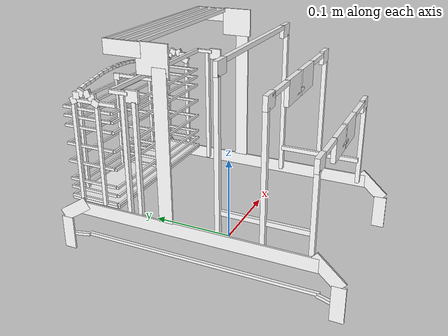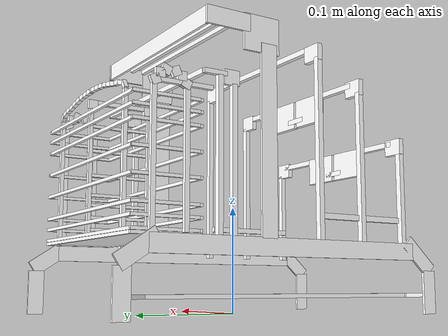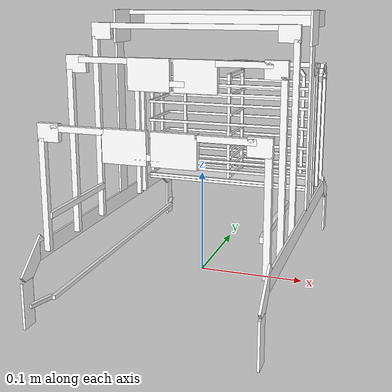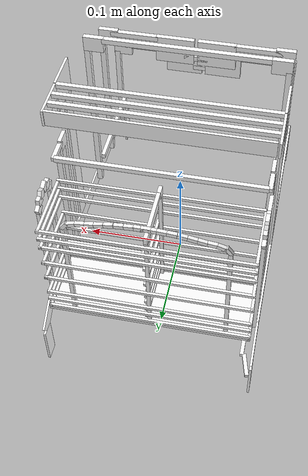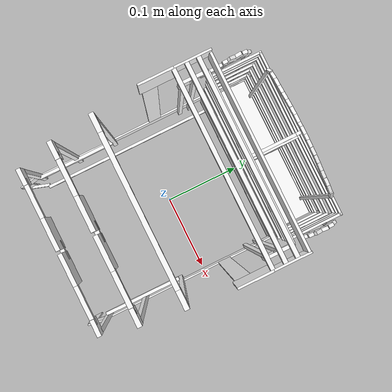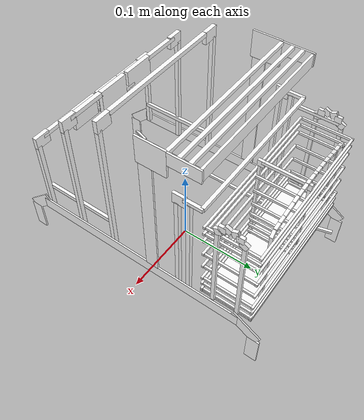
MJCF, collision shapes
<?xml version='1.0' encoding='utf-8'?>
<mujoco model="model">
  <option timestep="0.002" gravity="0.0 0.0 -9.81" />
  <compiler angle="radian" />
  <asset>
    <mesh file="visual/DishRack042.obj" name="DishRack042_vis" />
    <texture file="visual/T_BC001.png" name="DishRack042_material" type="2d" />
    <material name="DishRack042_material" rgba="1 1 1 1.0" texture="DishRack042_material" shininess="0.4472135901451111" specular="0.3103448502657381" />
  </asset>
  <default>
    <default class="visual">
      <geom conaffinity="0" contype="0" group="1" type="mesh" />
    </default>
    <default class="collision">
      <geom group="0" rgba="1 1 1 0.25" density="1.0" solref="0.004 1" solimp="0.998 0.998 0.001" />
    </default>
    <default class="spawn">
      <geom group="0" rgba="1 1 1 0.5" contype="0" conaffinity="0" />
      <site group="0" rgba="1 1 1 0.5" />
    </default>
    <default class="region">
      <geom group="1" conaffinity="0" contype="0" rgba="0 1 0 0" mass="0" />
    </default>
  </default>
  <worldbody>
    <body>
      <body name="object">
        <geom mesh="DishRack042_vis" type="mesh" solimp="0.998 0.998 0.001" solref="0.001 1" friction="0.95 0.3 0.1" class="visual" material="DishRack042_material" />
        <geom type="box" pos="0.09812424331903458 0.14519676566123962 0.05329057574272156" size="0.0010000000474974513 0.00732495216652751 0.020183244720101357" quat="0.47491875290870667 -0.8800296783447266 -0.0 0.0" class="collision" />
        <geom type="box" pos="0.09812424331903458 0.15834902226924896 0.02018326334655285" size="0.00100003182888031 0.007325205951929092 0.020183753222227097" quat="1.0 0.0 0.0 0.0" class="collision" />
        <geom type="box" pos="0.09812424331903458 -0.00020394474267959595 0.0578056201338768" size="0.0010000314796343446 0.13755778968334198 0.007815157063305378" quat="1.0 0.0 0.0 0.0" class="collision" />
        <geom type="box" pos="0.09812424331903458 -0.14589247107505798 0.05329057574272156" size="0.0010000000474974513 0.00732495216652751 0.020183244720101357" quat="0.914061963558197 -0.4055745601654053 -0.0 0.0" class="collision" />
        <geom type="box" pos="0.09812424331903458 -0.15855813026428223 0.02018326334655285" size="0.001000031246803701 0.007325201760977507 0.02018374390900135" quat="1.0 0.0 0.0 0.0" class="collision" />
        <geom type="box" pos="-0.09801483899354935 -0.15855813026428223 0.02018326334655285" size="0.0011167555348947644 0.00732519943267107 0.020183740183711052" quat="1.0 0.0 0.0 0.0" class="collision" />
        <geom type="box" pos="-0.09811704605817795 -0.14589247107505798 0.05329057574272156" size="0.0010000000474974513 0.00732495216652751 0.020183244720101357" quat="0.914061963558197 -0.4055745601654053 -0.0 0.0" class="collision" />
        <geom type="box" pos="-0.08700335770845413 -0.00020396495528984815 0.017600763589143753" size="0.0018623655196279287 0.13755768537521362 0.0017073304625228047" quat="1.0 0.0 0.0 0.0" class="collision" />
        <geom type="box" pos="-0.09811704605817795 0.15834902226924896 0.02018326334655285" size="0.0010000304318964481 0.007325194776058197 0.020183730870485306" quat="1.0 0.0 0.0 0.0" class="collision" />
        <geom type="box" pos="-0.09811704605817795 0.14519676566123962 0.05329057574272156" size="0.0010000000474974513 0.00732495216652751 0.020183244720101357" quat="0.47491875290870667 -0.8800296783447266 -0.0 0.0" class="collision" />
        <geom type="box" pos="-0.09302928298711777 -0.1469597965478897 0.017600763589143753" size="0.001862304168753326 0.0017072830814868212 0.011708522215485573" quat="0.6989660859107971 0.6989661455154419 -0.10698767006397247 -0.10698766261339188" class="collision" />
        <geom type="box" pos="-0.09216161072254181 0.1474674940109253 0.017600763589143753" size="0.001862304168753326 0.0017072830814868212 0.011708522215485573" quat="0.701445460319519 0.701445460319519 0.08929882943630219 0.08929882943630219" class="collision" />
        <geom type="box" pos="-0.09807482361793518 -0.00020394474267959595 0.0578056201338768" size="0.00104225252289325 0.13755761086940765 0.007815145887434483" quat="1.0 0.0 0.0 0.0" class="collision" />
        <geom type="box" pos="0.0617334358394146 -0.12929661571979523 0.16236911714076996" size="0.023731574416160583 0.0025506233796477318 0.002500049537047744" quat="1.0 0.0 0.0 0.0" class="collision" />
        <geom type="box" pos="0.08788196742534637 -0.12929661571979523 0.15877528488636017" size="0.009599801152944565 0.002550623146817088 0.007552897557616234" quat="1.0 0.0 0.0 0.0" class="collision" />
        <geom type="box" pos="0.09449537098407745 -0.12929661571979523 0.10512560606002808" size="0.0026883198879659176 0.0025506222154945135 0.04873150214552879" quat="1.0 0.0 0.0 0.0" class="collision" />
        <geom type="box" pos="0.020886199548840523 -0.12929661571979523 0.15136735141277313" size="0.018887117505073547 0.0025506222154945135 0.013812217861413956" quat="1.0 0.0 0.0 0.0" class="collision" />
        <geom type="box" pos="-0.020360084250569344 -0.12929661571979523 0.15136735141277313" size="0.0188871119171381 0.002550621749833226 0.013812215067446232" quat="1.0 0.0 0.0 0.0" class="collision" />
        <geom type="box" pos="-0.09396925568580627 -0.12929661571979523 0.10512560606002808" size="0.002688318258151412 0.002550620585680008 0.048731476068496704" quat="1.0 0.0 0.0 0.0" class="collision" />
        <geom type="box" pos="-0.0873558521270752 -0.12929661571979523 0.15877528488636017" size="0.00959978997707367 0.0025506203528493643 0.007552885916084051" quat="1.0 0.0 0.0 0.0" class="collision" />
        <geom type="box" pos="-0.06120732054114342 -0.12929661571979523 0.16236911714076996" size="0.023731542751193047 0.0025506194215267897 0.0025000455789268017" quat="1.0 0.0 0.0 0.0" class="collision" />
        <geom type="box" pos="-3.9637088775634766e-06 -0.12929661571979523 0.14458726346492767" size="0.011679471470415592 0.0025506189558655024 0.0025000451132655144" quat="1.0 0.0 0.0 0.0" class="collision" />
        <geom type="box" pos="-3.9637088775634766e-06 -0.07923830300569534 0.19556832313537598" size="0.011679469607770443 0.002550618490204215 0.0025000455789268017" quat="1.0 0.0 0.0 0.0" class="collision" />
        <geom type="box" pos="-0.06120732054114342 -0.07923830300569534 0.21335017681121826" size="0.023731529712677002 0.002550617791712284 0.0025000451132655144" quat="1.0 0.0 0.0 0.0" class="collision" />
        <geom type="box" pos="-0.0873558521270752 -0.07923830300569534 0.20975634455680847" size="0.009599778801202774 0.0025506175588816404 0.007552877068519592" quat="1.0 0.0 0.0 0.0" class="collision" />
        <geom type="box" pos="-0.09396925568580627 -0.07923830300569534 0.13061612844467163" size="0.00268831430003047 0.002550616627559066 0.07422278821468353" quat="1.0 0.0 0.0 0.0" class="collision" />
        <geom type="box" pos="-0.020360084250569344 -0.07923830300569534 0.20234842598438263" size="0.018887070938944817 0.002550616627559066 0.013812195509672165" quat="1.0 0.0 0.0 0.0" class="collision" />
        <geom type="box" pos="0.020886199548840523 -0.07923830300569534 0.20234842598438263" size="0.018887067213654518 0.0025506161618977785 0.013812192715704441" quat="1.0 0.0 0.0 0.0" class="collision" />
        <geom type="box" pos="0.09449537098407745 -0.07923830300569534 0.13061612844467163" size="0.0026883126702159643 0.0025506149977445602 0.07422273606061935" quat="1.0 0.0 0.0 0.0" class="collision" />
        <geom type="box" pos="0.08788196742534637 -0.07923830300569534 0.20975634455680847" size="0.009599767625331879 0.0025506147649139166 0.007552865892648697" quat="1.0 0.0 0.0 0.0" class="collision" />
        <geom type="box" pos="0.0617334358394146 -0.07923830300569534 0.21335017681121826" size="0.023731498047709465 0.002550613833591342 0.0025000411551445723" quat="1.0 0.0 0.0 0.0" class="collision" />
        <geom type="box" pos="0.08788196742534637 -0.03079475648701191 0.23550064861774445" size="0.009599762968719006 0.0025506136007606983 0.007552865892648697" quat="1.0 0.0 0.0 0.0" class="collision" />
        <geom type="box" pos="0.09449537098407745 -0.03079475648701191 0.14348828792572021" size="0.0026883103419095278 0.0025506126694381237 0.08709480613470078" quat="1.0 0.0 0.0 0.0" class="collision" />
        <geom type="box" pos="-0.09396925568580627 -0.03079475648701191 0.14348828792572021" size="0.002688309643417597 0.0025506122037768364 0.08709479123353958" quat="1.0 0.0 0.0 0.0" class="collision" />
        <geom type="box" pos="-0.0873558521270752 -0.03079475648701191 0.23550064861774445" size="0.009599755518138409 0.0025506119709461927 0.007552858907729387" quat="1.0 0.0 0.0 0.0" class="collision" />
        <geom type="box" pos="0.0007912907749414444 -0.03079475648701191 0.24038106203079224" size="0.07891037315130234 0.002550611039623618 0.0025000451132655144" quat="1.0 0.0 0.0 0.0" class="collision" />
        <geom type="box" pos="-0.09126342833042145 -0.08056387305259705 0.08722738921642303" size="0.001986763207241893 0.0482235811650753 0.0026085420977324247" quat="1.0 0.0 0.0 0.0" class="collision" />
        <geom type="box" pos="-0.00014976662350818515 0.05129773169755936 0.2512452304363251" size="0.09793826192617416 0.0020790824200958014 0.002036513527855277" quat="1.0 0.0 0.0 0.0" class="collision" />
        <geom type="box" pos="0.09810756146907806 0.06720468401908875 0.24551424384117126" size="0.0010562663665041327 0.021432172507047653 0.007775335106998682" quat="1.0 0.0 0.0 0.0" class="collision" />
        <geom type="box" pos="0.09810470789670944 0.034254997968673706 0.2378646731376648" size="0.001102047273889184 0.017711753025650978 0.016128387302160263" quat="1.0 0.0 0.0 0.0" class="collision" />
        <geom type="box" pos="0.09001735597848892 -0.08056387305259705 0.08722738921642303" size="0.0019867608789354563 0.048223547637462616 0.002608539769425988" quat="1.0 0.0 0.0 0.0" class="collision" />
        <geom type="box" pos="-0.09818189591169357 0.02702193334698677 0.14764058589935303" size="0.00105626555159688 0.00794873759150505 0.08294233679771423" quat="1.0 0.0 0.0 0.0" class="collision" />
        <geom type="box" pos="0.09810756146907806 0.02702193334698677 0.14764058589935303" size="0.0010562652023509145 0.007948735728859901 0.08294232189655304" quat="1.0 0.0 0.0 0.0" class="collision" />
        <geom type="box" pos="0.0007937625050544739 0.08667310327291489 0.24551424384117126" size="0.09664298593997955 0.0013266701716929674 0.007775323931127787" quat="1.0 0.0 0.0 0.0" class="collision" />
        <geom type="box" pos="-0.09803177416324615 0.034254997968673706 0.2378646731376648" size="0.001102045876905322 0.017711730673909187 0.016128364950418472" quat="1.0 0.0 0.0 0.0" class="collision" />
        <geom type="box" pos="-0.09809741377830505 0.06720468401908875 0.24551424384117126" size="0.0010562643874436617 0.021432140842080116 0.0077753192745149136" quat="1.0 0.0 0.0 0.0" class="collision" />
        <geom type="box" pos="-0.00014976662350818515 0.06397181004285812 0.2512452304363251" size="0.09793810546398163 0.002079077297821641 0.0020365084055811167" quat="1.0 0.0 0.0 0.0" class="collision" />
        <geom type="box" pos="-0.00014976662350818515 0.07547774910926819 0.2512452304363251" size="0.09793808311223984 0.00207907659932971 0.0020365079399198294" quat="1.0 0.0 0.0 0.0" class="collision" />
        <geom type="box" pos="0.0005906226579099894 0.14925682544708252 0.1738404482603073" size="0.09360899031162262 0.0012909588403999805 0.0013491717400029302" quat="1.0 0.0 0.0 0.0" class="collision" />
        <geom type="box" pos="0.09469316899776459 0.059669505804777145 0.12221623957157135" size="0.0024942331947386265 0.0023115708027035 0.06884057819843292" quat="1.0 0.0 0.0 0.0" class="collision" />
        <geom type="box" pos="0.09476630389690399 0.062097638845443726 0.19637197256088257" size="0.0017205722397193313 0.007347515318542719 0.006519752088934183" quat="1.0 0.0 0.0 0.0" class="collision" />
        <geom type="box" pos="0.09457383304834366 0.0775551125407219 0.19879381358623505" size="0.0019450861727818847 0.010875292122364044 0.0020287316292524338" quat="1.0 0.0 0.0 0.0" class="collision" />
        <geom type="box" pos="-0.09395468980073929 0.0775551125407219 0.19879381358623505" size="0.0019450861727818847 0.010875292122364044 0.0020287316292524338" quat="1.0 0.0 0.0 0.0" class="collision" />
        <geom type="box" pos="-0.09376221895217896 0.062097638845443726 0.19637197256088257" size="0.0017205722397193313 0.007347515318542719 0.006519752088934183" quat="1.0 0.0 0.0 0.0" class="collision" />
        <geom type="box" pos="-0.09383535385131836 0.059669505804777145 0.12221623957157135" size="0.0024942331947386265 0.0023115708027035 0.06884057819843292" quat="1.0 0.0 0.0 0.0" class="collision" />
        <geom type="box" pos="-0.09383535385131836 0.07313530147075653 0.12529203295707703" size="0.0024942331947386265 0.0023115708027035 0.0719163715839386" quat="1.0 0.0 0.0 0.0" class="collision" />
        <geom type="box" pos="0.09469316899776459 0.07313530147075653 0.12529203295707703" size="0.0024942331947386265 0.0023115708027035 0.0719163715839386" quat="1.0 0.0 0.0 0.0" class="collision" />
        <geom type="box" pos="0.09251801669597626 0.12066538631916046 0.1738404482603073" size="0.001296572620049119 0.029882393777370453 0.0013491717400029302" quat="1.0 0.0 0.0 0.0" class="collision" />
        <geom type="box" pos="0.0005906226579099894 0.08904540538787842 0.1738404482603073" size="0.09360899031162262 0.0012909588403999805 0.0013491717400029302" quat="1.0 0.0 0.0 0.0" class="collision" />
        <geom type="box" pos="-0.0927247479557991 0.12066538631916046 0.1738404482603073" size="0.001296572620049119 0.029882393777370453 0.0013491717400029302" quat="1.0 0.0 0.0 0.0" class="collision" />
        <geom type="box" pos="-0.0927247479557991 0.12066538631916046 0.1638977974653244" size="0.001296572620049119 0.029882393777370453 0.0013491717400029302" quat="1.0 0.0 0.0 0.0" class="collision" />
        <geom type="box" pos="0.0005906226579099894 0.08904540538787842 0.1638977974653244" size="0.09360899031162262 0.0012909588403999805 0.0013491717400029302" quat="1.0 0.0 0.0 0.0" class="collision" />
        <geom type="box" pos="0.09251801669597626 0.12066538631916046 0.1638977974653244" size="0.001296572620049119 0.029882393777370453 0.0013491717400029302" quat="1.0 0.0 0.0 0.0" class="collision" />
        <geom type="box" pos="0.0005906226579099894 0.14925682544708252 0.1638977974653244" size="0.09360899031162262 0.0012909588403999805 0.0013491717400029302" quat="1.0 0.0 0.0 0.0" class="collision" />
        <geom type="box" pos="0.0005906226579099894 0.14925682544708252 0.1525777131319046" size="0.09360899031162262 0.0012909588403999805 0.0013491717400029302" quat="1.0 0.0 0.0 0.0" class="collision" />
        <geom type="box" pos="0.09251801669597626 0.12066538631916046 0.1525777131319046" size="0.001296572620049119 0.029882393777370453 0.0013491717400029302" quat="1.0 0.0 0.0 0.0" class="collision" />
        <geom type="box" pos="0.0005906226579099894 0.08904540538787842 0.1525777131319046" size="0.09360899031162262 0.0012909588403999805 0.0013491717400029302" quat="1.0 0.0 0.0 0.0" class="collision" />
        <geom type="box" pos="-0.0927247479557991 0.12066538631916046 0.1525777131319046" size="0.001296572620049119 0.029882393777370453 0.0013491717400029302" quat="1.0 0.0 0.0 0.0" class="collision" />
        <geom type="box" pos="-0.0927247479557991 0.12066538631916046 0.1315518319606781" size="0.001296572620049119 0.029882393777370453 0.0013491717400029302" quat="1.0 0.0 0.0 0.0" class="collision" />
        <geom type="box" pos="0.0005906226579099894 0.08904540538787842 0.1315518319606781" size="0.09360899031162262 0.0012909588403999805 0.0013491717400029302" quat="1.0 0.0 0.0 0.0" class="collision" />
        <geom type="box" pos="0.09251801669597626 0.12066538631916046 0.1315518319606781" size="0.001296572620049119 0.029882393777370453 0.0013491717400029302" quat="1.0 0.0 0.0 0.0" class="collision" />
        <geom type="box" pos="0.0005906226579099894 0.14925682544708252 0.1315518319606781" size="0.09360899031162262 0.0012909588403999805 0.0013491717400029302" quat="1.0 0.0 0.0 0.0" class="collision" />
        <geom type="box" pos="0.0005906226579099894 0.14925682544708252 0.1105259507894516" size="0.09360899031162262 0.0012909588403999805 0.0013491717400029302" quat="1.0 0.0 0.0 0.0" class="collision" />
        <geom type="box" pos="0.09251801669597626 0.12066538631916046 0.1105259507894516" size="0.001296572620049119 0.029882393777370453 0.0013491717400029302" quat="1.0 0.0 0.0 0.0" class="collision" />
        <geom type="box" pos="0.0005906226579099894 0.08904540538787842 0.1105259507894516" size="0.09360899031162262 0.0012909588403999805 0.0013491717400029302" quat="1.0 0.0 0.0 0.0" class="collision" />
        <geom type="box" pos="-0.0927247479557991 0.12066538631916046 0.1105259507894516" size="0.001296572620049119 0.029882393777370453 0.0013491717400029302" quat="1.0 0.0 0.0 0.0" class="collision" />
        <geom type="box" pos="-0.0927247479557991 0.12066538631916046 0.08904941380023956" size="0.001296572620049119 0.029882393777370453 0.0013491717400029302" quat="1.0 0.0 0.0 0.0" class="collision" />
        <geom type="box" pos="0.0005906226579099894 0.08904540538787842 0.08904941380023956" size="0.09360899031162262 0.0012909588403999805 0.0013491717400029302" quat="1.0 0.0 0.0 0.0" class="collision" />
        <geom type="box" pos="0.09251801669597626 0.12066538631916046 0.08904941380023956" size="0.001296572620049119 0.029882393777370453 0.0013491717400029302" quat="1.0 0.0 0.0 0.0" class="collision" />
        <geom type="box" pos="0.0005906226579099894 0.14925682544708252 0.08904941380023956" size="0.09360899031162262 0.0012909588403999805 0.0013491717400029302" quat="1.0 0.0 0.0 0.0" class="collision" />
        <geom type="box" pos="0.0005906226579099894 0.14925682544708252 0.07887743413448334" size="0.09360899031162262 0.0012909588403999805 0.0013491717400029302" quat="1.0 0.0 0.0 0.0" class="collision" />
        <geom type="box" pos="0.09251801669597626 0.12066538631916046 0.07887743413448334" size="0.001296572620049119 0.029882393777370453 0.0013491717400029302" quat="1.0 0.0 0.0 0.0" class="collision" />
        <geom type="box" pos="0.0005906226579099894 0.08904540538787842 0.07887743413448334" size="0.09360899031162262 0.0012909588403999805 0.0013491717400029302" quat="1.0 0.0 0.0 0.0" class="collision" />
        <geom type="box" pos="-0.0927247479557991 0.12066538631916046 0.07887743413448334" size="0.001296572620049119 0.029882393777370453 0.0013491717400029302" quat="1.0 0.0 0.0 0.0" class="collision" />
        <geom type="box" pos="-0.0927247479557991 0.12066538631916046 0.06559590995311737" size="0.001296572620049119 0.029882393777370453 0.0013491717400029302" quat="1.0 0.0 0.0 0.0" class="collision" />
        <geom type="box" pos="0.0005906226579099894 0.08904540538787842 0.06559590995311737" size="0.09360899031162262 0.0012909588403999805 0.0013491717400029302" quat="1.0 0.0 0.0 0.0" class="collision" />
        <geom type="box" pos="0.09251801669597626 0.12066538631916046 0.06559590995311737" size="0.001296572620049119 0.029882393777370453 0.0013491717400029302" quat="1.0 0.0 0.0 0.0" class="collision" />
        <geom type="box" pos="0.0005906226579099894 0.14925682544708252 0.06559590995311737" size="0.09360899031162262 0.0012909588403999805 0.0013491717400029302" quat="1.0 0.0 0.0 0.0" class="collision" />
        <geom type="box" pos="0.0005906226579099894 0.0871577039361 0.19882707297801971" size="0.09360899031162262 0.0020162523724138737 0.002220979193225503" quat="1.0 0.0 0.0 0.0" class="collision" />
        <geom type="box" pos="0.0021278641652315855 0.11885514855384827 0.1420135200023651" size="0.0012965725036337972 0.029202518984675407 0.0013491717400029302" quat="1.0 0.0 0.0 0.0" class="collision" />
        <geom type="box" pos="0.0021278641652315855 0.11885514855384827 0.12047063559293747" size="0.0012965725036337972 0.029202518984675407 0.0013491717400029302" quat="1.0 0.0 0.0 0.0" class="collision" />
        <geom type="box" pos="0.0021278641652315855 0.11885514855384827 0.10328598320484161" size="0.0012965725036337972 0.029202518984675407 0.0013491717400029302" quat="1.0 0.0 0.0 0.0" class="collision" />
        <geom type="box" pos="0.0021278641652315855 0.11885514855384827 0.094805046916008" size="0.0012965725036337972 0.029202518984675407 0.0013491717400029302" quat="1.0 0.0 0.0 0.0" class="collision" />
        <geom type="box" pos="0.0021278641652315855 0.11885514855384827 0.08397959917783737" size="0.0012965725036337972 0.029202518984675407 0.0013491717400029302" quat="1.0 0.0 0.0 0.0" class="collision" />
        <geom type="box" pos="0.0021278641652315855 0.11885514855384827 0.07360344380140305" size="0.0012965725036337972 0.029202518984675407 0.0013491717400029302" quat="1.0 0.0 0.0 0.0" class="collision" />
        <geom type="box" pos="0.0021278641652315855 0.11885514855384827 0.16374467313289642" size="0.0012965725036337972 0.029202518984675407 0.0013491717400029302" quat="1.0 0.0 0.0 0.0" class="collision" />
        <geom type="box" pos="-0.0003130196128040552 0.11868306994438171 0.1843297928571701" size="0.0016986498376354575 0.024996059015393257 0.0018562134355306625" quat="1.0 0.0 0.0 0.0" class="collision" />
        <geom type="box" pos="-0.0004213925276417285 0.1452857404947281 0.18239150941371918" size="0.0017893007025122643 0.00401107594370842 0.003873587818816304" quat="1.0 0.0 0.0 0.0" class="collision" />
        <geom type="box" pos="-0.00044715835247188807 0.1467295140028 0.12338940799236298" size="0.0016299005364999175 0.001601002411916852 0.056869711726903915" quat="1.0 0.0 0.0 0.0" class="collision" />
        <geom type="box" pos="-0.00044715835247188807 0.0915246233344078 0.12338940799236298" size="0.0016299003036692739 0.0016010021790862083 0.05686969310045242" quat="1.0 0.0 0.0 0.0" class="collision" />
        <geom type="box" pos="-0.0004213925276417285 0.0929683968424797 0.18239150941371918" size="0.0017892990726977587 0.004011072218418121 0.0038735843263566494" quat="1.0 0.0 0.0 0.0" class="collision" />
        <geom type="box" pos="-0.09577339887619019 0.13397184014320374 0.12338940799236298" size="0.0016298997215926647 0.0021535418927669525 0.05686965584754944" quat="1.0 0.0 0.0 0.0" class="collision" />
        <geom type="box" pos="-0.09574763476848602 0.1329449564218521 0.1839190423488617" size="0.004011050797998905 0.0017892876639962196 0.0038735629059374332" quat="0.6906969547271729 -0.15145190060138702 -0.15145191550254822 -0.6906970143318176" class="collision" />
        <geom type="box" pos="-0.09563925862312317 0.10600697994232178 0.1843297928571701" size="0.0016986480914056301 0.02499603107571602 0.0018562100594863296" quat="1.0 0.0 0.0 0.0" class="collision" />
        <geom type="box" pos="-0.09574763476848602 0.12880012392997742 0.1896679699420929" size="0.0017892967443913221 0.004031879361718893 0.0038244561292231083" quat="1.0 0.0 0.0 0.0" class="collision" />
        <geom type="box" pos="-0.09574763476848602 0.12342377007007599 0.19274164736270905" size="0.004011050797998905 0.0017892876639962196 0.0038735626731067896" quat="0.6918314695358276 0.1461821347475052 0.1461821049451828 -0.6918314695358276" class="collision" />
        <geom type="box" pos="-0.09574763476848602 0.11503975093364716 0.19274164736270905" size="0.004011050797998905 0.0017892876639962196 0.0038735626731067896" quat="0.6918314695358276 -0.146182119846344 0.146182119846344 0.6918314695358276" class="collision" />
        <geom type="box" pos="-0.09574763476848602 0.10966339707374573 0.1896679699420929" size="0.001789296162314713 0.0040318784303963184 0.00382445496506989" quat="1.0 0.0 0.0 0.0" class="collision" />
        <geom type="box" pos="-0.09574763476848602 0.10551856458187103 0.1839190423488617" size="0.004011050797998905 0.0017892876639962196 0.0038735629059374332" quat="0.6906970143318176 0.15145190060138702 -0.15145191550254822 0.6906969547271729" class="collision" />
        <geom type="box" pos="-0.09577339887619019 0.10449168086051941 0.12338940799236298" size="0.0016298986738547683 0.002153539564460516 0.05686958506703377" quat="1.0 0.0 0.0 0.0" class="collision" />
        <geom type="box" pos="0.09537690877914429 0.10449168086051941 0.12338940799236298" size="0.0016298983246088028 0.0021535390987992287 0.056869566440582275" quat="1.0 0.0 0.0 0.0" class="collision" />
        <geom type="box" pos="0.09540267288684845 0.10551856458187103 0.1839190423488617" size="0.004011050797998905 0.0017892876639962196 0.0038735629059374332" quat="0.6906970143318176 0.15145190060138702 -0.15145191550254822 0.6906969547271729" class="collision" />
        <geom type="box" pos="0.09540267288684845 0.10966339707374573 0.1896679699420929" size="0.0017892945325002074 0.00403187470510602 0.003824451472610235" quat="1.0 0.0 0.0 0.0" class="collision" />
        <geom type="box" pos="0.09540267288684845 0.11503975093364716 0.19274164736270905" size="0.004011050797998905 0.0017892876639962196 0.0038735626731067896" quat="0.6918314695358276 -0.146182119846344 0.146182119846344 0.6918314695358276" class="collision" />
        <geom type="box" pos="0.09540267288684845 0.12342377007007599 0.19274164736270905" size="0.004011050797998905 0.0017892876639962196 0.0038735626731067896" quat="0.6918314695358276 0.1461821347475052 0.1461821049451828 -0.6918314695358276" class="collision" />
        <geom type="box" pos="0.09540267288684845 0.12880012392997742 0.1896679699420929" size="0.0017892939504235983 0.004031873773783445 0.003824450308457017" quat="1.0 0.0 0.0 0.0" class="collision" />
        <geom type="box" pos="0.09540267288684845 0.1329449564218521 0.1839190423488617" size="0.004011050797998905 0.0017892876639962196 0.0038735629059374332" quat="0.6906969547271729 -0.15145190060138702 -0.15145191550254822 -0.6906970143318176" class="collision" />
        <geom type="box" pos="0.07065597176551819 0.14638908207416534 0.12338940799236298" size="0.0017797090113162994 0.001750897616147995 0.0568695105612278" quat="1.0 0.0 0.0 0.0" class="collision" />
        <geom type="box" pos="0.0691283568739891 0.14638908207416534 0.18364809453487396" size="0.0017797034233808517 0.0017508948221802711 0.0042350864969193935" quat="0.9542053937911987 7.828645509633247e-10 -0.29915234446525574 2.3450315023154644e-09" class="collision" />
        <geom type="box" pos="0.063046894967556 0.14638908207416534 0.1867217719554901" size="0.0017797034233808517 0.0017508948221802711 0.0042350864969193935" quat="0.8053207993507385 -1.3075202254242413e-08 -0.5928393006324768 -3.916616719834565e-08" class="collision" />
        <geom type="box" pos="0.05531611293554306 0.14638908207416534 0.18846042454242706" size="0.0017797035397961736 0.0017508948221802711 0.004235086962580681" quat="0.6633944511413574 3.9135247931199046e-08 0.7482698559761047 1.17227976659251e-07" class="collision" />
        <geom type="box" pos="0.047181714326143265 0.14638908207416534 0.18960916996002197" size="0.0017797034233808517 0.0017508948221802711 0.0042350864969193935" quat="0.6359711289405823 3.971164019844764e-08 0.7717128396034241 1.1895536289330266e-07" class="collision" />
        <geom type="box" pos="0.038985222578048706 0.14638908207416534 0.19113048911094666" size="0.0017797034233808517 0.0017508948221802711 0.0042350864969193935" quat="0.6359711289405823 3.971164019844764e-08 0.7717128396034241 1.1895536289330266e-07" class="collision" />
        <geom type="box" pos="0.03063349425792694 0.14638908207416534 0.19258971512317657" size="0.0017797034233808517 0.0017508948221802711 0.0042350864969193935" quat="0.6470820307731628 3.948636617678858e-08 0.7624203562736511 1.1828034018890321e-07" class="collision" />
        <geom type="box" pos="0.022033385932445526 0.14638908207416534 0.19361427426338196" size="0.0017797034233808517 0.0017508948221802711 0.0042350864969193935" quat="0.674288809299469 3.8886135200755234e-08 0.7384677529335022 1.1648236153405378e-07" class="collision" />
        <geom type="box" pos="0.013588517904281616 0.14638908207416534 0.19414207339286804" size="0.0017797034233808517 0.0017508948221802711 0.0042350864969193935" quat="0.6813094019889832 3.871983267345058e-08 0.7319955825805664 1.1598306315363516e-07" class="collision" />
        <geom type="box" pos="0.005392028950154781 0.14638908207416534 0.1945456862449646" size="0.00430605374276638 0.0017508981982246041 0.0019558724015951157" quat="1.0 0.0 0.0 0.0" class="collision" />
        <geom type="box" pos="-0.0006311503238976002 0.14638908207416534 0.1947319656610489" size="0.004248920362442732 0.0017508978489786386 0.0018128606025129557" quat="1.0 0.0 0.0 0.0" class="collision" />
        <geom type="box" pos="-0.005576875060796738 0.14638908207416534 0.1945456862449646" size="0.0017797034233808517 0.0017508948221802711 0.0042350864969193935" quat="0.6921103596687317 3.8453379147540545e-08 -0.721791684627533 -1.151848820768464e-07" class="collision" />
        <geom type="box" pos="-0.013773363083600998 0.14638908207416534 0.19414207339286804" size="0.0017797034233808517 0.0017508948221802711 0.0042350864969193935" quat="0.6813094019889832 3.8719562667210994e-08 -0.7319955825805664 -1.1598326921102853e-07" class="collision" />
        <geom type="box" pos="-0.022218231111764908 0.14638908207416534 0.19361427426338196" size="0.0017797034233808517 0.0017508948221802711 0.0042350864969193935" quat="0.6742889285087585 3.888599664492176e-08 -0.7384676337242126 -1.164819067867029e-07" class="collision" />
        <geom type="box" pos="-0.030818339437246323 0.14638908207416534 0.19258971512317657" size="0.0017797034233808517 0.0017508948221802711 0.0042350864969193935" quat="0.6470820307731628 3.9486351965933864e-08 -0.7624203562736511 -1.182803259780485e-07" class="collision" />
        <geom type="box" pos="-0.03917006775736809 0.14638908207416534 0.19113048911094666" size="0.0017797034233808517 0.0017508948221802711 0.0042350864969193935" quat="0.6359712481498718 3.9711828492272616e-08 -0.7717127799987793 -1.1895482998625084e-07" class="collision" />
        <geom type="box" pos="-0.047366559505462646 0.14638908207416534 0.18960916996002197" size="0.0017797034233808517 0.0017508948221802711 0.0042350864969193935" quat="0.6359712481498718 3.9711828492272616e-08 -0.7717127799987793 -1.1895482998625084e-07" class="collision" />
        <geom type="box" pos="-0.05550095811486244 0.14638908207416534 0.18846042454242706" size="0.0017797034233808517 0.0017508948221802711 0.0042350864969193935" quat="0.663394570350647 3.913512003350661e-08 -0.7482697367668152 -1.1722784876155856e-07" class="collision" />
        <geom type="box" pos="-0.06323173642158508 0.14638908207416534 0.1867217719554901" size="0.0017797034233808517 0.0017508948221802711 0.0042350864969193935" quat="0.8053207993507385 -1.307521113602661e-08 0.5928393006324768 3.9166174303773005e-08" class="collision" />
        <geom type="box" pos="-0.06931319832801819 0.14638908207416534 0.18364809453487396" size="0.0017797034233808517 0.0017508948221802711 0.0042350864969193935" quat="0.9542053937911987 7.82864606474476e-10 0.29915231466293335 -2.3450317243600693e-09" class="collision" />
        <geom type="box" pos="-0.07084082067012787 0.14638908207416534 0.12338940799236298" size="0.0017797073815017939 0.0017508968012407422 0.05686945840716362" quat="1.0 0.0 0.0 0.0" class="collision" />
        <geom type="box" pos="-0.0927247479557991 0.12066538631916046 0.06849664449691772" size="0.001296572620049119 0.029882393777370453 0.0013491717400029302" quat="1.0 0.0 0.0 0.0" class="collision" />
        <geom type="box" pos="0.0005906226579099894 0.08904540538787842 0.06849664449691772" size="0.09360899031162262 0.0012909588403999805 0.0013491717400029302" quat="1.0 0.0 0.0 0.0" class="collision" />
        <geom type="box" pos="0.09251801669597626 0.12066538631916046 0.06849664449691772" size="0.001296572620049119 0.029882393777370453 0.0013491717400029302" quat="1.0 0.0 0.0 0.0" class="collision" />
        <geom type="box" pos="0.0005906226579099894 0.14925682544708252 0.06849664449691772" size="0.09360899031162262 0.0012909588403999805 0.0013491717400029302" quat="1.0 0.0 0.0 0.0" class="collision" />
        <geom type="box" pos="-0.00037657609209418297 0.11906209588050842 0.06648799777030945" size="0.09200100600719452 0.02932550385594368 0.001349171856418252" quat="1.0 0.0 0.0 0.0" class="collision" />
        <geom type="box" pos="0.09544764459133148 0.13397184014320374 0.12338940799236298" size="0.0016298949485644698 0.0021535323467105627 0.056869350373744965" quat="1.0 0.0 0.0 0.0" class="collision" />
        <geom class="region" name="reg_int_0" type="box" pos="-0.0007180869579315186 -0.1025279313325882 0.18452550563961267" size="0.08776784485578537 0.019505796790122987 0.16477471294254065" />
        <geom class="region" name="reg_int_1" type="box" pos="-0.0007181316614151001 -0.05547577887773514 0.18452549073845148" size="0.08776789700984955 0.019505796790122987 0.16477469804137945" />
        <geom class="region" name="reg_int_2" type="box" pos="-0.0007181018590927124 0.027750592678785324 0.1338616544380784" size="0.08776794171333313 0.052059287041425706 0.11411086174100638" />
        <geom class="region" name="reg_int_3" type="box" pos="0.0003232210874557495 0.06775013729929924 0.3016163110733032" size="0.0950626859664917 0.019505800515413285 0.0476839075088501" />
        <geom class="region" name="reg_int_4" type="box" pos="-0.04686031024903059 0.11741570383310318 0.2097812220454216" size="0.04319013173133135 0.026085680186748506 0.13951899653673172" />
        <geom class="region" name="reg_int_5" type="box" pos="0.047003019601106644 0.11764783039689064 0.20972619950771332" size="0.04319329729676247 0.02613187751173973 0.13957401907444" />
        <geom size="0.10048682 0.16747803 0.12760231" pos="0.0 0.0 0.0" name="reg_bbox" class="region" type="box" quat="1.0 0.0 0.0 0.0" />
        </body>
    </body>
  </worldbody>
  <actuator />
</mujoco>
